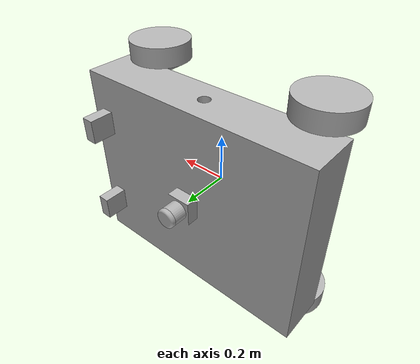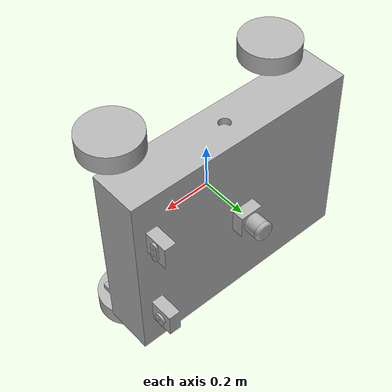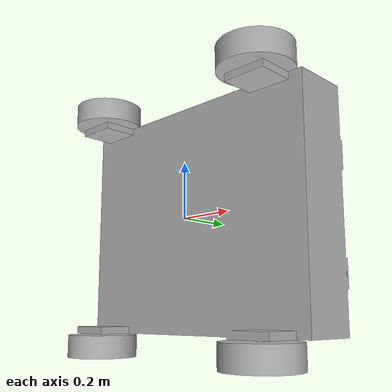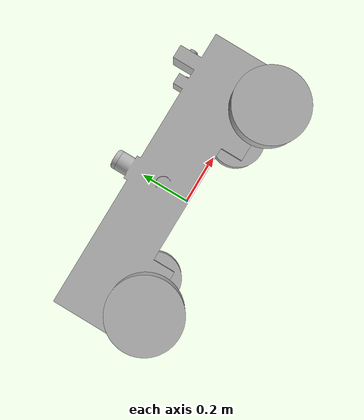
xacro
<?xml version="1.0" ?>
<robot name="new_lunarbot_4WD" xmlns:xacro="http://www.ros.org/wiki/xacro">

<xacro:include filename="$(find new_lunarbot_4WD_description)/urdf/materials.xacro" />
<xacro:include filename="$(find new_lunarbot_4WD_description)/urdf/new_lunarbot_4WD.trans" />
<xacro:include filename="$(find new_lunarbot_4WD_description)/urdf/new_lunarbot_4WD.gazebo" />

<link name="base_link">
  <inertial>
    <origin xyz="0.025281380414140207 0.0965197263893732 5.540028305206848e-16" rpy="0 0 0"/>
    <mass value="10.38913545077827"/>
    <inertia ixx="4.249137" iyy="8.745545" izz="5.520127" ixy="-0.181856" iyz="0.0" ixz="0.0"/>
  </inertial>
  <visual>
 <origin xyz="0 0 0" rpy="0 0 0"/>
    <geometry>
      <mesh filename="file://$(find new_lunarbot_4WD_description)/meshes/base_link.stl" scale="0.001 0.001 0.001"/>
    </geometry>
    <material name="silver"/>
  </visual>
  <collision>
   <origin xyz="0 0 0" rpy="0 0 0"/>

    <geometry>
      <mesh filename="file://$(find new_lunarbot_4WD_description)/meshes/base_link.stl" scale="0.001 0.001 0.001"/>
    </geometry>
  </collision>
</link>

<link name="front_right_wheel_1">
  <inertial>
    <origin xyz="0.0 6.938893903907228e-18 0.039999999999999925" rpy="0 0 0"/>
    <mass value="3.6521014597981334"/>
    <inertia ixx="0.016214" iyy="0.016214" izz="0.028532" ixy="-0.0" iyz="0.0" ixz="-0.0"/>
  </inertial>
  <visual>
    <origin xyz="-0.375 0.0625 -0.405" rpy="0 0 0"/>
    <geometry>
      <mesh filename="file://$(find new_lunarbot_4WD_description)/meshes/front_right_wheel_1.stl" scale="0.001 0.001 0.001"/>
    </geometry>
    <material name="silver"/>
  </visual>
  <collision>
    <origin xyz="-0.375 0.0625 -0.405" rpy="0 0 0"/>
    <geometry>
      <mesh filename="file://$(find new_lunarbot_4WD_description)/meshes/front_right_wheel_1.stl" scale="0.001 0.001 0.001"/>
    </geometry>
  </collision>
</link>

<link name="back_right_wheel_1">
  <inertial>
    <origin xyz="0.0 6.938893903907228e-17 0.039999999999999925" rpy="0 0 0"/>
    <mass value="3.6521014597981334"/>
    <inertia ixx="0.016214" iyy="0.016214" izz="0.028532" ixy="0.0" iyz="-0.0" ixz="-0.0"/>
  </inertial>
  <visual>
    <origin xyz="0.375 0.0625 -0.405" rpy="0 0 0"/>
    <geometry>
      <mesh filename="file://$(find new_lunarbot_4WD_description)/meshes/back_right_wheel_1.stl" scale="0.001 0.001 0.001"/>
    </geometry>
    <material name="silver"/>
  </visual>
  <collision>
    <origin xyz="0.375 0.0625 -0.405" rpy="0 0 0"/>
    <geometry>
      <mesh filename="file://$(find new_lunarbot_4WD_description)/meshes/back_right_wheel_1.stl" scale="0.001 0.001 0.001"/>
    </geometry>
  </collision>
</link>

<link name="left_front_wheel_1">
  <inertial>
    <origin xyz="-2.220446049250313e-16 6.938893903907228e-17 -0.03999999999999998" rpy="0 0 0"/>
    <mass value="3.6521014597981334"/>
    <inertia ixx="0.016214" iyy="0.016214" izz="0.028532" ixy="0.0" iyz="0.0" ixz="0.0"/>
  </inertial>
  <visual>
    <origin xyz="-0.375 0.0625 0.405" rpy="0 0 0"/>
    <geometry>
      <mesh filename="file://$(find new_lunarbot_4WD_description)/meshes/left_front_wheel_1.stl" scale="0.001 0.001 0.001"/>
    </geometry>
    <material name="silver"/>
  </visual>
  <collision>
    <origin xyz="-0.375 0.0625 0.405" rpy="0 0 0"/>
    <geometry>
      <mesh filename="file://$(find new_lunarbot_4WD_description)/meshes/left_front_wheel_1.stl" scale="0.001 0.001 0.001"/>
    </geometry>
  </collision>
</link>

<link name="left_back_wheel_1">
  <inertial>
    <origin xyz="-5.551115123125783e-17 -1.1102230246251565e-16 -0.04000000000000009" rpy="0 0 0"/>
    <mass value="3.7062020346014934"/>
    <inertia ixx="0.016668" iyy="0.016668" izz="0.029384" ixy="0.0" iyz="0.0" ixz="0.0"/>
  </inertial>
  <visual>
    <origin xyz="0.375 0.0625 0.405" rpy="0 0 0"/>
    <geometry>
      <mesh filename="file://$(find new_lunarbot_4WD_description)/meshes/left_back_wheel_1.stl" scale="0.001 0.001 0.001"/>
    </geometry>
    <material name="silver"/>
  </visual>
  <collision>
    <origin xyz="0.375 0.0625 0.405" rpy="0 0 0"/>
    <geometry>
      <mesh filename="file://$(find new_lunarbot_4WD_description)/meshes/left_back_wheel_1.stl" scale="0.001 0.001 0.001"/>
    </geometry>
  </collision>
</link>

<link name="lidar_link_1">
  <inertial>
    <origin xyz="1.191203729180934e-17 0.009588532305110864 1.191203729180934e-17" rpy="0 0 0"/>
    <mass value="0.13170529290040542"/>
    <inertia ixx="5.5e-05" iyy="0.000101" izz="5.5e-05" ixy="0.0" iyz="0.0" ixz="0.0"/>
  </inertial>
  <visual>
    <origin xyz="-0.0 -0.31 -0.0" rpy="0 0 0"/>
    <geometry>
      <mesh filename="file://$(find new_lunarbot_4WD_description)/meshes/lidar_link_1.stl" scale="0.001 0.001 0.001"/>
    </geometry>
    <material name="silver"/>
  </visual>
  <collision>
    <origin xyz="-0.0 -0.31 -0.0" rpy="0 0 0"/>
    <geometry>
      <mesh filename="file://$(find new_lunarbot_4WD_description)/meshes/lidar_link_1.stl" scale="0.001 0.001 0.001"/>
    </geometry>
  </collision>
</link>

<link name="rgbcam_link_1">
  <inertial>
    <origin xyz="0.004948064710596833 5.551115123125783e-17 1.0880185641326534e-14" rpy="0 0 0"/>
    <mass value="0.026544792054216608"/>
    <inertia ixx="8e-06" iyy="4e-06" izz="4e-06" ixy="0.0" iyz="0.0" ixz="0.0"/>
  </inertial>
  <visual>
    <origin xyz="-0.45 -0.255 0.2" rpy="0 0 0"/>
    <geometry>
      <mesh filename="file://$(find new_lunarbot_4WD_description)/meshes/rgbcam_link_1.stl" scale="0.001 0.001 0.001"/>
    </geometry>
    <material name="silver"/>
  </visual>
  <collision>
    <origin xyz="-0.45 -0.255 0.2" rpy="0 0 0"/>
    <geometry>
      <mesh filename="file://$(find new_lunarbot_4WD_description)/meshes/rgbcam_link_1.stl" scale="0.001 0.001 0.001"/>
    </geometry>
  </collision>
</link>

<link name="depthcam_link_1">
  <inertial>
    <origin xyz="0.004785223339815292 -1.6653345369377348e-16 0.00019271975843965228" rpy="0 0 0"/>
    <mass value="0.03060993416266549"/>
    <inertia ixx="1.9e-05" iyy="1.7e-05" izz="3e-06" ixy="-0.0" iyz="0.0" ixz="-0.0"/>
  </inertial>
  <visual>
    <origin xyz="-0.45 -0.255 -0.2" rpy="0 0 0"/>
    <geometry>
      <mesh filename="file://$(find new_lunarbot_4WD_description)/meshes/depthcam_link_1.stl" scale="0.001 0.001 0.001"/>
    </geometry>
    <material name="silver"/>
  </visual>
  <collision>
    <origin xyz="-0.45 -0.255 -0.2" rpy="0 0 0"/>
    <geometry>
      <mesh filename="file://$(find new_lunarbot_4WD_description)/meshes/depthcam_link_1.stl" scale="0.001 0.001 0.001"/>
    </geometry>
  </collision>
</link>

<link name="battery_link_1">
  <inertial>
    <origin xyz="-0.24999999999999986 0.054999999999999966 0.19999999999999954" rpy="0 0 0"/>
    <mass value="3.8324999999999996"/>
    <inertia ixx="0.01038" iyy="0.027147" izz="0.023155" ixy="-0.0" iyz="-0.0" ixz="-0.0"/>
  </inertial>
  <visual>
    <origin xyz="-0.0 -0.0 0.0" rpy="0 0 0"/>
    <geometry>
      <mesh filename="file://$(find new_lunarbot_4WD_description)/meshes/battery_link_1.stl" scale="0.001 0.001 0.001"/>
    </geometry>
    <material name="silver"/>
  </visual>
  <collision>
    <origin xyz="-0.0 -0.0 0.0" rpy="0 0 0"/>
    <geometry>
      <mesh filename="file://$(find new_lunarbot_4WD_description)/meshes/battery_link_1.stl" scale="0.001 0.001 0.001"/>
    </geometry>
  </collision>
</link>

<link name="cpu_link_1">
  <inertial>
    <origin xyz="0.0 0.025 0.0" rpy="0 0 0"/>
    <mass value="0.40879999999999994"/>
    <inertia ixx="0.000395" iyy="0.000681" izz="0.000395" ixy="0.0" iyz="0.0" ixz="0.0"/>
  </inertial>
  <visual>
    <origin xyz="-0.0 -0.0 0.0" rpy="0 0 0"/>
    <geometry>
      <mesh filename="file://$(find new_lunarbot_4WD_description)/meshes/cpu_link_1.stl" scale="0.001 0.001 0.001"/>
    </geometry>
    <material name="silver"/>
  </visual>
  <collision>
    <origin xyz="-0.0 -0.0 0.0" rpy="0 0 0"/>
    <geometry>
      <mesh filename="file://$(find new_lunarbot_4WD_description)/meshes/cpu_link_1.stl" scale="0.001 0.001 0.001"/>
    </geometry>
  </collision>
</link>

<link name="heater_link_1">
  <inertial>
    <origin xyz="0.30000000000000004 0.045 0.2499999999999999" rpy="0 0 0"/>
    <mass value="2.4528"/>
    <inertia ixx="0.009484" iyy="0.012775" izz="0.005907" ixy="0.0" iyz="-0.0" ixz="0.0"/>
  </inertial>
  <visual>
    <origin xyz="-0.0 -0.0 0.0" rpy="0 0 0"/>
    <geometry>
      <mesh filename="file://$(find new_lunarbot_4WD_description)/meshes/heater_link_1.stl" scale="0.001 0.001 0.001"/>
    </geometry>
    <material name="silver"/>
  </visual>
  <collision>
    <origin xyz="-0.0 -0.0 0.0" rpy="0 0 0"/>
    <geometry>
      <mesh filename="file://$(find new_lunarbot_4WD_description)/meshes/heater_link_1.stl" scale="0.001 0.001 0.001"/>
    </geometry>
  </collision>
</link>

<link name="pcb_link_1">
  <inertial>
    <origin xyz="0.29999999999999954 0.03500000000000032 -0.24999999999999975" rpy="0 0 0"/>
    <mass value="2.2994999999999997"/>
    <inertia ixx="0.005001" iyy="0.016288" izz="0.012666" ixy="0.0" iyz="-0.0" ixz="-0.0"/>
  </inertial>
  <visual>
    <origin xyz="-0.0 -0.0 0.0" rpy="0 0 0"/>
    <geometry>
      <mesh filename="file://$(find new_lunarbot_4WD_description)/meshes/pcb_link_1.stl" scale="0.001 0.001 0.001"/>
    </geometry>
    <material name="silver"/>
  </visual>
  <collision>
    <origin xyz="-0.0 -0.0 0.0" rpy="0 0 0"/>
    <geometry>
      <mesh filename="file://$(find new_lunarbot_4WD_description)/meshes/pcb_link_1.stl" scale="0.001 0.001 0.001"/>
    </geometry>
  </collision>
</link>

<link name="imu_link_1">
  <inertial>
    <origin xyz="-0.3500000000000011 0.015000000000000116 -0.25000000000000017" rpy="0 0 0"/>
    <mass value="0.10219999999999999"/>
    <inertia ixx="8.9e-05" iyy="0.000106" izz="2.5e-05" ixy="0.0" iyz="-0.0" ixz="-0.0"/>
  </inertial>
  <visual>
    <origin xyz="-0.0 -0.0 0.0" rpy="0 0 0"/>
    <geometry>
      <mesh filename="file://$(find new_lunarbot_4WD_description)/meshes/imu_link_1.stl" scale="0.001 0.001 0.001"/>
    </geometry>
    <material name="silver"/>
  </visual>
  <collision>
    <origin xyz="-0.0 -0.0 0.0" rpy="0 0 0"/>
    <geometry>
      <mesh filename="file://$(find new_lunarbot_4WD_description)/meshes/imu_link_1.stl" scale="0.001 0.001 0.001"/>
    </geometry>
  </collision>
</link>

<joint name="front_right_wheel_joint" type="continuous">
  <origin xyz="0.375 -0.0625 0.405" rpy="0 0 0"/>
  <parent link="base_link"/>
  <child link="front_right_wheel_1"/>
  <axis xyz="0 0 -1"/>
</joint>

<joint name="back_right_wheel_joint" type="continuous">
  <origin xyz="-0.375 -0.0625 0.405" rpy="0 0 0"/>
  <parent link="base_link"/>
  <child link="back_right_wheel_1"/>
  <axis xyz="0 0 -1"/>
</joint>

<joint name="left_front_wheel_joint" type="continuous">
  <origin xyz="0.375 -0.0625 -0.405" rpy="0 0 0"/>
  <parent link="base_link"/>
  <child link="left_front_wheel_1"/>
  <axis xyz="0 0 -1"/>
</joint>

<joint name="left_back_wheel_joint" type="continuous">
  <origin xyz="-0.375 -0.0625 -0.405" rpy="0 0 0"/>
  <parent link="base_link"/>
  <child link="left_back_wheel_1"/>
  <axis xyz="0 0 -1"/>
</joint>

<joint name="Rigid 5" type="fixed">
  <origin xyz="0.0 0.31 0.0" rpy="0 0 0"/>
  <parent link="base_link"/>
  <child link="lidar_link_1"/>
</joint>

<joint name="Rigid 6" type="fixed">
  <origin xyz="0.45 0.255 -0.2" rpy="0 0 0"/>
  <parent link="base_link"/>
  <child link="rgbcam_link_1"/>
</joint>

<joint name="Rigid 7" type="fixed">
  <origin xyz="0.45 0.255 0.2" rpy="0 0 0"/>
  <parent link="base_link"/>
  <child link="depthcam_link_1"/>
</joint>

<joint name="Rigid 8" type="fixed">
  <origin xyz="0.0 0.0 0.0" rpy="0 0 0"/>
  <parent link="base_link"/>
  <child link="battery_link_1"/>
</joint>

<joint name="Rigid 9" type="fixed">
  <origin xyz="0.0 0.0 0.0" rpy="0 0 0"/>
  <parent link="base_link"/>
  <child link="cpu_link_1"/>
</joint>

<joint name="Rigid 10" type="fixed">
  <origin xyz="0.0 0.0 0.0" rpy="0 0 0"/>
  <parent link="base_link"/>
  <child link="heater_link_1"/>
</joint>

<joint name="Rigid 11" type="fixed">
  <origin xyz="0.0 0.0 0.0" rpy="0 0 0"/>
  <parent link="base_link"/>
  <child link="pcb_link_1"/>
</joint>

<joint name="Rigid 12" type="fixed">
  <origin xyz="0.0 0.0 0.0" rpy="0 0 0"/>
  <parent link="base_link"/>
  <child link="imu_link_1"/>
</joint>

</robot>

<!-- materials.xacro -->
<robot name="new_lunarbot_4WD" xmlns:xacro="http://www.ros.org/wiki/xacro" >

<material name="silver">
  <color rgba="0.700 0.700 0.700 1.000"/>
</material>

</robot>

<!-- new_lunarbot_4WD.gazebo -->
<robot name="new_lunarbot_4WD" xmlns:xacro="http://www.ros.org/wiki/xacro" >

<xacro:property name="body_color" value="Gazebo/Silver" />

<gazebo>
  <plugin name="control" filename="libgazebo_ros_control.so"/>
</gazebo>

<gazebo>
  <plugin name="four_wheel_drive" filename="libgazebo_ros_diff_drive.so">

    <ros>
      <namespace>/</namespace>
      <remapping>cmd_vel:=/cmd_vel</remapping>
      <remapping>odom:=/odom</remapping>
    </ros>

    <!-- how many wheel PAIRS (left+right) -->
    <num_wheel_pairs>2</num_wheel_pairs>

    <!-- LEFT SIDE (2 wheels) -->
    <left_joint>left_front_wheel_joint</left_joint>
    <left_joint>left_back_wheel_joint</left_joint>

    <!-- RIGHT SIDE (2 wheels) -->
    <right_joint>front_right_wheel_joint</right_joint>
    <right_joint>back_right_wheel_joint</right_joint>

    <!-- kinematics -->
    <wheel_separation>0.81</wheel_separation>
    <wheel_diameter>0.16</wheel_diameter>

    <!-- frames -->
    <robot_base_frame>base_footprint</robot_base_frame>
    <odometry_frame>odom</odometry_frame>

    <!-- limits -->
    <max_wheel_torque>20.0</max_wheel_torque>
    <max_wheel_acceleration>5.0</max_wheel_acceleration>

    <!-- output -->
    <publish_odom>true</publish_odom>
    <publish_odom_tf>true</publish_odom_tf>
    <publish_wheel_tf>true</publish_wheel_tf>

    <command_topic>cmd_vel</command_topic>
    <odometry_topic>odom</odometry_topic>

    <update_rate>50</update_rate>
    <legacy_mode>false</legacy_mode>

  </plugin>
</gazebo>

<gazebo reference="imu_link_1">
  <sensor name="imu_sensor" type="imu">
    <always_on>true</always_on>
    <update_rate>50</update_rate>

    <plugin name="imu_plugin" filename="libgazebo_ros_imu_sensor.so">
      <ros>
        <namespace>/</namespace>
        <remapping>imu:=/imu</remapping>
      </ros>
      <frame_name>imu_link_1</frame_name>
    </plugin>
  </sensor>
</gazebo>

<gazebo reference="rgbcam_link_1">
  <sensor type="camera" name="rgb_camera">
    <always_on>true</always_on>
    <update_rate>15</update_rate>
    <camera>
      <horizontal_fov>1.047</horizontal_fov>
      <image>
        <width>640</width>
        <height>480</height>
        <format>R8G8B8</format>
      </image>
      <clip>
        <near>0.1</near>
        <far>50.0</far>
      </clip>
    </camera>

    <plugin name="rgb_camera_plugin" filename="libgazebo_ros_camera.so">
      <ros>
        <namespace>/</namespace>
        <remapping>image_raw:=/camera/rgb/image_raw</remapping>
        <remapping>camera_info:=/camera/rgb/camera_info</remapping>
      </ros>
      <frame_name>rgbcam_link_1</frame_name>
    </plugin>
  </sensor>
</gazebo>
<gazebo reference="depthcam_link_1">
  <sensor type="depth" name="depth_camera">
    <always_on>true</always_on>
    <update_rate>10</update_rate>
    <camera>
      <horizontal_fov>1.047</horizontal_fov>
      <image>
        <width>640</width>
        <height>480</height>
        <format>R8G8B8</format>
      </image>
      <clip>
        <near>0.1</near>
        <far>30.0</far>
      </clip>
    </camera>

    <plugin name="depth_camera_plugin" filename="libgazebo_ros_depth_camera.so">
      <ros>
        <namespace>/</namespace>
        <remapping>image_raw:=/camera/depth/image_raw</remapping>
        <remapping>camera_info:=/camera/depth/camera_info</remapping>
      </ros>
      <frame_name>depthcam_link_1</frame_name>
    </plugin>
  </sensor>
</gazebo>

<gazebo reference="lidar_link_1">
  <sensor type="ray" name="lidar_sensor">
    <always_on>true</always_on>
    <update_rate>15</update_rate>
    <visualize>true</visualize>

    <ray>
      <scan>
        <horizontal>
          <samples>360</samples>
          <resolution>1</resolution>
          <min_angle>-3.14159</min_angle>
          <max_angle>3.14159</max_angle>
        </horizontal>
      </scan>

      <range>
        <min>0.15</min>
        <max>20.0</max>
        <resolution>0.01</resolution>
      </range>

      <noise>
        <type>gaussian</type>
        <mean>0.0</mean>
        <stddev>0.01</stddev>
      </noise>
    </ray>

    <plugin name="gazebo_ros_laser" filename="libgazebo_ros_ray_sensor.so">
      <ros>
        <namespace>/</namespace>
        <remapping>~/out:=scan</remapping>
      </ros>
      <frame_name>lidar_link_1</frame_name>
      <output_type>sensor_msgs/LaserScan</output_type>
    </plugin>
  </sensor>
</gazebo>

<gazebo reference="base_link">
  <material>${body_color}</material>
  <mu1>0.2</mu1>
  <mu2>0.2</mu2>
  <self_collide>true</self_collide>
  <gravity>true</gravity>
</gazebo>

<gazebo reference="front_right_wheel_1">
  <material>${body_color}</material>
  <mu1>2000</mu1>
  <mu2>2000</mu2>
  <self_collide>true</self_collide>
</gazebo>

<gazebo reference="back_right_wheel_1">
  <material>${body_color}</material>
  <mu1>2000</mu1>
  <mu2>2000</mu2>
  <self_collide>true</self_collide>
</gazebo>

<gazebo reference="left_front_wheel_1">
  <material>${body_color}</material>
  <mu1>2000</mu1>
  <mu2>2000</mu2>
  <self_collide>true</self_collide>
</gazebo>

<gazebo reference="left_back_wheel_1">
  <material>${body_color}</material>
  <mu1>500</mu1>
  <mu2>500</mu2>
  <self_collide>true</self_collide>
</gazebo>

<gazebo reference="lidar_link_1">
  <material>${body_color}</material>
  <mu1>0.2</mu1>
  <mu2>0.2</mu2>
  <self_collide>true</self_collide>
</gazebo>

<gazebo reference="rgbcam_link_1">
  <material>${body_color}</material>
  <mu1>0.2</mu1>
  <mu2>0.2</mu2>
  <self_collide>true</self_collide>
</gazebo>

<gazebo reference="depthcam_link_1">
  <material>${body_color}</material>
  <mu1>0.2</mu1>
  <mu2>0.2</mu2>
  <self_collide>true</self_collide>
</gazebo>

<gazebo reference="battery_link_1">
  <material>${body_color}</material>
  <mu1>0.2</mu1>
  <mu2>0.2</mu2>
  <self_collide>true</self_collide>
</gazebo>

<gazebo reference="cpu_link_1">
  <material>${body_color}</material>
  <mu1>0.2</mu1>
  <mu2>0.2</mu2>
  <self_collide>true</self_collide>
</gazebo>

<gazebo reference="heater_link_1">
  <material>${body_color}</material>
  <mu1>0.2</mu1>
  <mu2>0.2</mu2>
  <self_collide>true</self_collide>
</gazebo>

<gazebo reference="pcb_link_1">
  <material>${body_color}</material>
  <mu1>0.2</mu1>
  <mu2>0.2</mu2>
  <self_collide>true</self_collide>
</gazebo>

<gazebo reference="imu_link_1">
  <material>${body_color}</material>
  <mu1>0.2</mu1>
  <mu2>0.2</mu2>
  <self_collide>true</self_collide>
</gazebo>

</robot>
